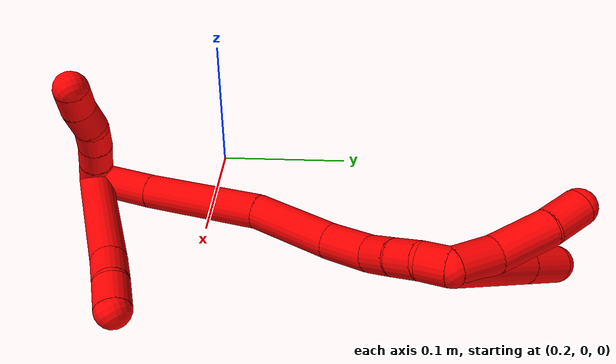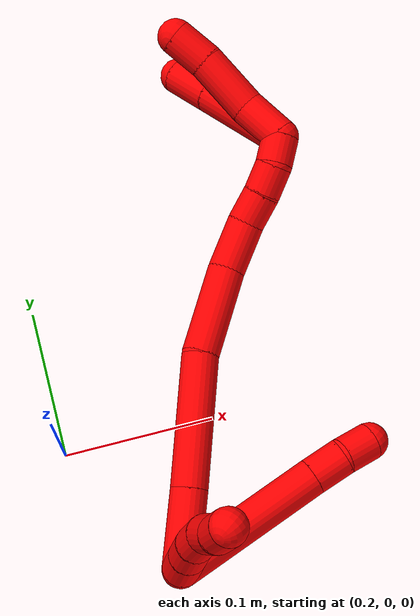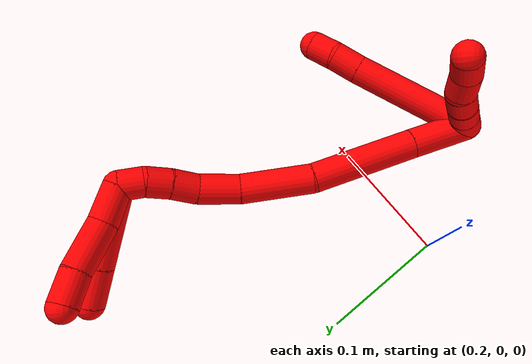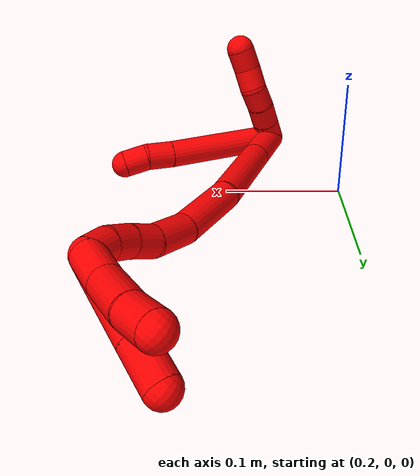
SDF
<sdf version="1.7">
 <world name="default">
  <model name="2">
   <static>0</static>
   <link name="2">
    <collision name="collision-cylinder-e_1_2_8">
     <pose>-0.030918 0.006807 0.041382 -0.16303 -0.635274 0.053705</pose>
     <geometry><cylinder><radius>0.0125</radius><length>0.104206</length></cylinder></geometry>
     <surface>
      <friction><ode><mu>1.16</mu><mu2>1.16</mu2><slip1>0</slip1><slip2>0</slip2></ode></friction>
      <contact><ode><kp>1e+06</kp><kd>1</kd><max_vel>0</max_vel><min_depth>0.001</min_depth></ode></contact>
     </surface>
    </collision>
    <visual name="visual-cylinder-e_1_2_8">
     <pose>-0.030918 0.006807 0.041382 -0.16303 -0.635274 0.053705</pose>
     <geometry><cylinder><radius>0.0125</radius><length>0.104206</length></cylinder></geometry>
     <material><ambient>1 0 0 1</ambient></material>
    </visual>
    <collision name="collision-cylinder-e_2_8_9">
     <pose>-0.069549 0.015231 0.0919 -0.175206 -0.693532 0.063455</pose>
     <geometry><cylinder><radius>0.0125</radius><length>0.02413</length></cylinder></geometry>
     <surface>
      <friction><ode><mu>1.16</mu><mu2>1.16</mu2><slip1>0</slip1><slip2>0</slip2></ode></friction>
      <contact><ode><kp>1e+06</kp><kd>1</kd><max_vel>0</max_vel><min_depth>0.001</min_depth></ode></contact>
     </surface>
    </collision>
    <visual name="visual-cylinder-e_2_8_9">
     <pose>-0.069549 0.015231 0.0919 -0.175206 -0.693532 0.063455</pose>
     <geometry><cylinder><radius>0.0125</radius><length>0.02413</length></cylinder></geometry>
     <material><ambient>1 0 0 1</ambient></material>
    </visual>
    <collision name="collision-cylinder-e_3_9_6">
     <pose>-0.082674 0.016437 0.11041 0.043826 -0.52329 -0.011738</pose>
     <geometry><cylinder><radius>0.0125</radius><length>0.021663</length></cylinder></geometry>
     <surface>
      <friction><ode><mu>1.16</mu><mu2>1.16</mu2><slip1>0</slip1><slip2>0</slip2></ode></friction>
      <contact><ode><kp>1e+06</kp><kd>1</kd><max_vel>0</max_vel><min_depth>0.001</min_depth></ode></contact>
     </surface>
    </collision>
    <visual name="visual-cylinder-e_3_9_6">
     <pose>-0.082674 0.016437 0.11041 0.043826 -0.52329 -0.011738</pose>
     <geometry><cylinder><radius>0.0125</radius><length>0.021663</length></cylinder></geometry>
     <material><ambient>1 0 0 1</ambient></material>
    </visual>
    <collision name="collision-cylinder-e_1_2_10">
     <pose>-0.007071 0.006709 -0.002234 -1.89219 -0.785433 1.04292</pose>
     <geometry><cylinder><radius>0.0125</radius><length>0.02</length></cylinder></geometry>
     <surface>
      <friction><ode><mu>1.16</mu><mu2>1.16</mu2><slip1>0</slip1><slip2>0</slip2></ode></friction>
      <contact><ode><kp>1e+06</kp><kd>1</kd><max_vel>0</max_vel><min_depth>0.001</min_depth></ode></contact>
     </surface>
    </collision>
    <visual name="visual-cylinder-e_1_2_10">
     <pose>-0.007071 0.006709 -0.002234 -1.89219 -0.785433 1.04292</pose>
     <geometry><cylinder><radius>0.0125</radius><length>0.02</length></cylinder></geometry>
     <material><ambient>1 0 0 1</ambient></material>
    </visual>
    <collision name="collision-cylinder-e_2_10_11">
     <pose>-0.02132 0.01995 -0.00688 -1.92455 -0.800491 1.09146</pose>
     <geometry><cylinder><radius>0.0125</radius><length>0.02</length></cylinder></geometry>
     <surface>
      <friction><ode><mu>1.16</mu><mu2>1.16</mu2><slip1>0</slip1><slip2>0</slip2></ode></friction>
      <contact><ode><kp>1e+06</kp><kd>1</kd><max_vel>0</max_vel><min_depth>0.001</min_depth></ode></contact>
     </surface>
    </collision>
    <visual name="visual-cylinder-e_2_10_11">
     <pose>-0.02132 0.01995 -0.00688 -1.92455 -0.800491 1.09146</pose>
     <geometry><cylinder><radius>0.0125</radius><length>0.02</length></cylinder></geometry>
     <material><ambient>1 0 0 1</ambient></material>
    </visual>
    <collision name="collision-cylinder-e_3_11_12">
     <pose>-0.036441 0.032143 -0.011494 -1.94189 -0.918011 1.25149</pose>
     <geometry><cylinder><radius>0.0125</radius><length>0.02</length></cylinder></geometry>
     <surface>
      <friction><ode><mu>1.16</mu><mu2>1.16</mu2><slip1>0</slip1><slip2>0</slip2></ode></friction>
      <contact><ode><kp>1e+06</kp><kd>1</kd><max_vel>0</max_vel><min_depth>0.001</min_depth></ode></contact>
     </surface>
    </collision>
    <visual name="visual-cylinder-e_3_11_12">
     <pose>-0.036441 0.032143 -0.011494 -1.94189 -0.918011 1.25149</pose>
     <geometry><cylinder><radius>0.0125</radius><length>0.02</length></cylinder></geometry>
     <material><ambient>1 0 0 1</ambient></material>
    </visual>
    <collision name="collision-cylinder-e_4_12_13">
     <pose>-0.052817 0.040867 -0.018114 -2.53507 -1.00328 2.10461</pose>
     <geometry><cylinder><radius>0.0125</radius><length>0.02</length></cylinder></geometry>
     <surface>
      <friction><ode><mu>1.16</mu><mu2>1.16</mu2><slip1>0</slip1><slip2>0</slip2></ode></friction>
      <contact><ode><kp>1e+06</kp><kd>1</kd><max_vel>0</max_vel><min_depth>0.001</min_depth></ode></contact>
     </surface>
    </collision>
    <visual name="visual-cylinder-e_4_12_13">
     <pose>-0.052817 0.040867 -0.018114 -2.53507 -1.00328 2.10461</pose>
     <geometry><cylinder><radius>0.0125</radius><length>0.02</length></cylinder></geometry>
     <material><ambient>1 0 0 1</ambient></material>
    </visual>
    <collision name="collision-cylinder-e_5_13_5">
     <pose>-0.069389 0.048814 -0.025676 -2.14312 -0.951031 1.51349</pose>
     <geometry><cylinder><radius>0.0125</radius><length>0.02</length></cylinder></geometry>
     <surface>
      <friction><ode><mu>1.16</mu><mu2>1.16</mu2><slip1>0</slip1><slip2>0</slip2></ode></friction>
      <contact><ode><kp>1e+06</kp><kd>1</kd><max_vel>0</max_vel><min_depth>0.001</min_depth></ode></contact>
     </surface>
    </collision>
    <visual name="visual-cylinder-e_5_13_5">
     <pose>-0.069389 0.048814 -0.025676 -2.14312 -0.951031 1.51349</pose>
     <geometry><cylinder><radius>0.0125</radius><length>0.02</length></cylinder></geometry>
     <material><ambient>1 0 0 1</ambient></material>
    </visual>
    <collision name="collision-cylinder-e_1_2_14">
     <pose>-0.000129 0.018304 0.017956 -0.794984 -0.005021 0.002108</pose>
     <geometry><cylinder><radius>0.0125</radius><length>0.051282</length></cylinder></geometry>
     <surface>
      <friction><ode><mu>1.16</mu><mu2>1.16</mu2><slip1>0</slip1><slip2>0</slip2></ode></friction>
      <contact><ode><kp>1e+06</kp><kd>1</kd><max_vel>0</max_vel><min_depth>0.001</min_depth></ode></contact>
     </surface>
    </collision>
    <visual name="visual-cylinder-e_1_2_14">
     <pose>-0.000129 0.018304 0.017956 -0.794984 -0.005021 0.002108</pose>
     <geometry><cylinder><radius>0.0125</radius><length>0.051282</length></cylinder></geometry>
     <material><ambient>1 0 0 1</ambient></material>
    </visual>
    <collision name="collision-cylinder-e_2_14_15">
     <pose>-0.000666 0.069634 0.066001 -0.83192 -0.00914 0.004038</pose>
     <geometry><cylinder><radius>0.0125</radius><length>0.08936</length></cylinder></geometry>
     <surface>
      <friction><ode><mu>1.16</mu><mu2>1.16</mu2><slip1>0</slip1><slip2>0</slip2></ode></friction>
      <contact><ode><kp>1e+06</kp><kd>1</kd><max_vel>0</max_vel><min_depth>0.001</min_depth></ode></contact>
     </surface>
    </collision>
    <visual name="visual-cylinder-e_2_14_15">
     <pose>-0.000666 0.069634 0.066001 -0.83192 -0.00914 0.004038</pose>
     <geometry><cylinder><radius>0.0125</radius><length>0.08936</length></cylinder></geometry>
     <material><ambient>1 0 0 1</ambient></material>
    </visual>
    <collision name="collision-cylinder-e_3_15_16">
     <pose>-0.005294 0.121115 0.119977 -0.657754 -0.138898 0.047469</pose>
     <geometry><cylinder><radius>0.0125</radius><length>0.060958</length></cylinder></geometry>
     <surface>
      <friction><ode><mu>1.16</mu><mu2>1.16</mu2><slip1>0</slip1><slip2>0</slip2></ode></friction>
      <contact><ode><kp>1e+06</kp><kd>1</kd><max_vel>0</max_vel><min_depth>0.001</min_depth></ode></contact>
     </surface>
    </collision>
    <visual name="visual-cylinder-e_3_15_16">
     <pose>-0.005294 0.121115 0.119977 -0.657754 -0.138898 0.047469</pose>
     <geometry><cylinder><radius>0.0125</radius><length>0.060958</length></cylinder></geometry>
     <material><ambient>1 0 0 1</ambient></material>
    </visual>
    <collision name="collision-cylinder-e_4_16_17">
     <pose>-0.015364 0.15088 0.155929 -0.753238 -0.340013 0.135577</pose>
     <geometry><cylinder><radius>0.0125</radius><length>0.035083</length></cylinder></geometry>
     <surface>
      <friction><ode><mu>1.16</mu><mu2>1.16</mu2><slip1>0</slip1><slip2>0</slip2></ode></friction>
      <contact><ode><kp>1e+06</kp><kd>1</kd><max_vel>0</max_vel><min_depth>0.001</min_depth></ode></contact>
     </surface>
    </collision>
    <visual name="visual-cylinder-e_4_16_17">
     <pose>-0.015364 0.15088 0.155929 -0.753238 -0.340013 0.135577</pose>
     <geometry><cylinder><radius>0.0125</radius><length>0.035083</length></cylinder></geometry>
     <material><ambient>1 0 0 1</ambient></material>
    </visual>
    <collision name="collision-cylinder-e_5_17_18">
     <pose>-0.027491 0.16952 0.173797 -0.900886 -0.591306 0.292487</pose>
     <geometry><cylinder><radius>0.0125</radius><length>0.02252</length></cylinder></geometry>
     <surface>
      <friction><ode><mu>1.16</mu><mu2>1.16</mu2><slip1>0</slip1><slip2>0</slip2></ode></friction>
      <contact><ode><kp>1e+06</kp><kd>1</kd><max_vel>0</max_vel><min_depth>0.001</min_depth></ode></contact>
     </surface>
    </collision>
    <visual name="visual-cylinder-e_5_17_18">
     <pose>-0.027491 0.16952 0.173797 -0.900886 -0.591306 0.292487</pose>
     <geometry><cylinder><radius>0.0125</radius><length>0.02252</length></cylinder></geometry>
     <material><ambient>1 0 0 1</ambient></material>
    </visual>
    <collision name="collision-cylinder-e_6_18_19">
     <pose>-0.038471 0.184137 0.185258 -0.910826 -0.471395 0.234161</pose>
     <geometry><cylinder><radius>0.0125</radius><length>0.020713</length></cylinder></geometry>
     <surface>
      <friction><ode><mu>1.16</mu><mu2>1.16</mu2><slip1>0</slip1><slip2>0</slip2></ode></friction>
      <contact><ode><kp>1e+06</kp><kd>1</kd><max_vel>0</max_vel><min_depth>0.001</min_depth></ode></contact>
     </surface>
    </collision>
    <visual name="visual-cylinder-e_6_18_19">
     <pose>-0.038471 0.184137 0.185258 -0.910826 -0.471395 0.234161</pose>
     <geometry><cylinder><radius>0.0125</radius><length>0.020713</length></cylinder></geometry>
     <material><ambient>1 0 0 1</ambient></material>
    </visual>
    <collision name="collision-cylinder-e_7_19_1">
     <pose>-0.04508 0.198662 0.197612 -0.824073 -0.19088 0.08363</pose>
     <geometry><cylinder><radius>0.0125</radius><length>0.020085</length></cylinder></geometry>
     <surface>
      <friction><ode><mu>1.16</mu><mu2>1.16</mu2><slip1>0</slip1><slip2>0</slip2></ode></friction>
      <contact><ode><kp>1e+06</kp><kd>1</kd><max_vel>0</max_vel><min_depth>0.001</min_depth></ode></contact>
     </surface>
    </collision>
    <visual name="visual-cylinder-e_7_19_1">
     <pose>-0.04508 0.198662 0.197612 -0.824073 -0.19088 0.08363</pose>
     <geometry><cylinder><radius>0.0125</radius><length>0.020085</length></cylinder></geometry>
     <material><ambient>1 0 0 1</ambient></material>
    </visual>
    <collision name="collision-cylinder-e_1_1_20">
     <pose>-0.036716 0.217272 0.206839 -1.35197 0.722465 -0.588453</pose>
     <geometry><cylinder><radius>0.0125</radius><length>0.031061</length></cylinder></geometry>
     <surface>
      <friction><ode><mu>1.16</mu><mu2>1.16</mu2><slip1>0</slip1><slip2>0</slip2></ode></friction>
      <contact><ode><kp>1e+06</kp><kd>1</kd><max_vel>0</max_vel><min_depth>0.001</min_depth></ode></contact>
     </surface>
    </collision>
    <visual name="visual-cylinder-e_1_1_20">
     <pose>-0.036716 0.217272 0.206839 -1.35197 0.722465 -0.588453</pose>
     <geometry><cylinder><radius>0.0125</radius><length>0.031061</length></cylinder></geometry>
     <material><ambient>1 0 0 1</ambient></material>
    </visual>
    <collision name="collision-cylinder-e_2_20_21">
     <pose>-0.016285 0.24695 0.210498 -1.50911 0.505928 -0.476811</pose>
     <geometry><cylinder><radius>0.0125</radius><length>0.041936</length></cylinder></geometry>
     <surface>
      <friction><ode><mu>1.16</mu><mu2>1.16</mu2><slip1>0</slip1><slip2>0</slip2></ode></friction>
      <contact><ode><kp>1e+06</kp><kd>1</kd><max_vel>0</max_vel><min_depth>0.001</min_depth></ode></contact>
     </surface>
    </collision>
    <visual name="visual-cylinder-e_2_20_21">
     <pose>-0.016285 0.24695 0.210498 -1.50911 0.505928 -0.476811</pose>
     <geometry><cylinder><radius>0.0125</radius><length>0.041936</length></cylinder></geometry>
     <material><ambient>1 0 0 1</ambient></material>
    </visual>
    <collision name="collision-cylinder-e_3_21_4">
     <pose>0.001524 0.276348 0.210742 -1.65056 0.602171 -0.648903</pose>
     <geometry><cylinder><radius>0.0125</radius><length>0.027004</length></cylinder></geometry>
     <surface>
      <friction><ode><mu>1.16</mu><mu2>1.16</mu2><slip1>0</slip1><slip2>0</slip2></ode></friction>
      <contact><ode><kp>1e+06</kp><kd>1</kd><max_vel>0</max_vel><min_depth>0.001</min_depth></ode></contact>
     </surface>
    </collision>
    <visual name="visual-cylinder-e_3_21_4">
     <pose>0.001524 0.276348 0.210742 -1.65056 0.602171 -0.648903</pose>
     <geometry><cylinder><radius>0.0125</radius><length>0.027004</length></cylinder></geometry>
     <material><ambient>1 0 0 1</ambient></material>
    </visual>
    <collision name="collision-cylinder-e_1_1_22">
     <pose>-0.019351 0.22213 0.213539 -1.05379 0.976579 -0.599431</pose>
     <geometry><cylinder><radius>0.0125</radius><length>0.066702</length></cylinder></geometry>
     <surface>
      <friction><ode><mu>1.16</mu><mu2>1.16</mu2><slip1>0</slip1><slip2>0</slip2></ode></friction>
      <contact><ode><kp>1e+06</kp><kd>1</kd><max_vel>0</max_vel><min_depth>0.001</min_depth></ode></contact>
     </surface>
    </collision>
    <visual name="visual-cylinder-e_1_1_22">
     <pose>-0.019351 0.22213 0.213539 -1.05379 0.976579 -0.599431</pose>
     <geometry><cylinder><radius>0.0125</radius><length>0.066702</length></cylinder></geometry>
     <material><ambient>1 0 0 1</ambient></material>
    </visual>
    <collision name="collision-cylinder-e_2_22_3">
     <pose>0.022099 0.246442 0.227355 -1.05441 0.978748 -0.601307</pose>
     <geometry><cylinder><radius>0.0125</radius><length>0.033298</length></cylinder></geometry>
     <surface>
      <friction><ode><mu>1.16</mu><mu2>1.16</mu2><slip1>0</slip1><slip2>0</slip2></ode></friction>
      <contact><ode><kp>1e+06</kp><kd>1</kd><max_vel>0</max_vel><min_depth>0.001</min_depth></ode></contact>
     </surface>
    </collision>
    <visual name="visual-cylinder-e_2_22_3">
     <pose>0.022099 0.246442 0.227355 -1.05441 0.978748 -0.601307</pose>
     <geometry><cylinder><radius>0.0125</radius><length>0.033298</length></cylinder></geometry>
     <material><ambient>1 0 0 1</ambient></material>
    </visual>
    <collision name="collision-sphere-3">
     <pose>0.035914 0.254521 0.231943 0 -0 0</pose>
     <geometry><sphere><radius>0.0125</radius></sphere></geometry>
     <surface>
      <friction><ode><mu>1.16</mu><mu2>1.16</mu2><slip1>0</slip1><slip2>0</slip2></ode></friction>
      <contact><ode><kp>1e+06</kp><kd>1</kd><max_vel>0</max_vel><min_depth>0.001</min_depth></ode></contact>
     </surface>
    </collision>
    <visual name="visual-sphere-3">
     <pose>0.035914 0.254521 0.231943 0 -0 0</pose>
     <geometry><sphere><radius>0.0125</radius></sphere></geometry>
     <material><ambient>1 0 0 1</ambient></material>
    </visual>
    <collision name="collision-sphere-22">
     <pose>0.008284 0.238362 0.222768 0 -0 0</pose>
     <geometry><sphere><radius>0.0125</radius></sphere></geometry>
     <surface>
      <friction><ode><mu>1.16</mu><mu2>1.16</mu2><slip1>0</slip1><slip2>0</slip2></ode></friction>
      <contact><ode><kp>1e+06</kp><kd>1</kd><max_vel>0</max_vel><min_depth>0.001</min_depth></ode></contact>
     </surface>
    </collision>
    <visual name="visual-sphere-22">
     <pose>0.008284 0.238362 0.222768 0 -0 0</pose>
     <geometry><sphere><radius>0.0125</radius></sphere></geometry>
     <material><ambient>1 0 0 1</ambient></material>
    </visual>
    <collision name="collision-sphere-4">
     <pose>0.009172 0.28744 0.209856 0 -0 0</pose>
     <geometry><sphere><radius>0.0125</radius></sphere></geometry>
     <surface>
      <friction><ode><mu>1.16</mu><mu2>1.16</mu2><slip1>0</slip1><slip2>0</slip2></ode></friction>
      <contact><ode><kp>1e+06</kp><kd>1</kd><max_vel>0</max_vel><min_depth>0.001</min_depth></ode></contact>
     </surface>
    </collision>
    <visual name="visual-sphere-4">
     <pose>0.009172 0.28744 0.209856 0 -0 0</pose>
     <geometry><sphere><radius>0.0125</radius></sphere></geometry>
     <material><ambient>1 0 0 1</ambient></material>
    </visual>
    <collision name="collision-sphere-21">
     <pose>-0.006124 0.265257 0.211629 0 -0 0</pose>
     <geometry><sphere><radius>0.0125</radius></sphere></geometry>
     <surface>
      <friction><ode><mu>1.16</mu><mu2>1.16</mu2><slip1>0</slip1><slip2>0</slip2></ode></friction>
      <contact><ode><kp>1e+06</kp><kd>1</kd><max_vel>0</max_vel><min_depth>0.001</min_depth></ode></contact>
     </surface>
    </collision>
    <visual name="visual-sphere-21">
     <pose>-0.006124 0.265257 0.211629 0 -0 0</pose>
     <geometry><sphere><radius>0.0125</radius></sphere></geometry>
     <material><ambient>1 0 0 1</ambient></material>
    </visual>
    <collision name="collision-sphere-20">
     <pose>-0.026446 0.228644 0.209368 0 -0 0</pose>
     <geometry><sphere><radius>0.0125</radius></sphere></geometry>
     <surface>
      <friction><ode><mu>1.16</mu><mu2>1.16</mu2><slip1>0</slip1><slip2>0</slip2></ode></friction>
      <contact><ode><kp>1e+06</kp><kd>1</kd><max_vel>0</max_vel><min_depth>0.001</min_depth></ode></contact>
     </surface>
    </collision>
    <visual name="visual-sphere-20">
     <pose>-0.026446 0.228644 0.209368 0 -0 0</pose>
     <geometry><sphere><radius>0.0125</radius></sphere></geometry>
     <material><ambient>1 0 0 1</ambient></material>
    </visual>
    <collision name="collision-sphere-11">
     <pose>-0.028497 0.026482 -0.009292 0 -0 0</pose>
     <geometry><sphere><radius>0.0125</radius></sphere></geometry>
     <surface>
      <friction><ode><mu>1.16</mu><mu2>1.16</mu2><slip1>0</slip1><slip2>0</slip2></ode></friction>
      <contact><ode><kp>1e+06</kp><kd>1</kd><max_vel>0</max_vel><min_depth>0.001</min_depth></ode></contact>
     </surface>
    </collision>
    <visual name="visual-sphere-11">
     <pose>-0.028497 0.026482 -0.009292 0 -0 0</pose>
     <geometry><sphere><radius>0.0125</radius></sphere></geometry>
     <material><ambient>1 0 0 1</ambient></material>
    </visual>
    <collision name="collision-sphere-10">
     <pose>-0.014143 0.013418 -0.004467 0 -0 0</pose>
     <geometry><sphere><radius>0.0125</radius></sphere></geometry>
     <surface>
      <friction><ode><mu>1.16</mu><mu2>1.16</mu2><slip1>0</slip1><slip2>0</slip2></ode></friction>
      <contact><ode><kp>1e+06</kp><kd>1</kd><max_vel>0</max_vel><min_depth>0.001</min_depth></ode></contact>
     </surface>
    </collision>
    <visual name="visual-sphere-10">
     <pose>-0.014143 0.013418 -0.004467 0 -0 0</pose>
     <geometry><sphere><radius>0.0125</radius></sphere></geometry>
     <material><ambient>1 0 0 1</ambient></material>
    </visual>
    <collision name="collision-sphere-6">
     <pose>-0.088087 0.016026 0.119783 0 -0 0</pose>
     <geometry><sphere><radius>0.0125</radius></sphere></geometry>
     <surface>
      <friction><ode><mu>1.16</mu><mu2>1.16</mu2><slip1>0</slip1><slip2>0</slip2></ode></friction>
      <contact><ode><kp>1e+06</kp><kd>1</kd><max_vel>0</max_vel><min_depth>0.001</min_depth></ode></contact>
     </surface>
    </collision>
    <visual name="visual-sphere-6">
     <pose>-0.088087 0.016026 0.119783 0 -0 0</pose>
     <geometry><sphere><radius>0.0125</radius></sphere></geometry>
     <material><ambient>1 0 0 1</ambient></material>
    </visual>
    <collision name="collision-sphere-9">
     <pose>-0.077261 0.016848 0.101036 0 -0 0</pose>
     <geometry><sphere><radius>0.0125</radius></sphere></geometry>
     <surface>
      <friction><ode><mu>1.16</mu><mu2>1.16</mu2><slip1>0</slip1><slip2>0</slip2></ode></friction>
      <contact><ode><kp>1e+06</kp><kd>1</kd><max_vel>0</max_vel><min_depth>0.001</min_depth></ode></contact>
     </surface>
    </collision>
    <visual name="visual-sphere-9">
     <pose>-0.077261 0.016848 0.101036 0 -0 0</pose>
     <geometry><sphere><radius>0.0125</radius></sphere></geometry>
     <material><ambient>1 0 0 1</ambient></material>
    </visual>
    <collision name="collision-sphere-2">
     <geometry><sphere><radius>0.0125</radius></sphere></geometry>
     <surface>
      <friction><ode><mu>1.16</mu><mu2>1.16</mu2><slip1>0</slip1><slip2>0</slip2></ode></friction>
      <contact><ode><kp>1e+06</kp><kd>1</kd><max_vel>0</max_vel><min_depth>0.001</min_depth></ode></contact>
     </surface>
    </collision>
    <visual name="visual-sphere-2">
     <geometry><sphere><radius>0.0125</radius></sphere></geometry>
     <material><ambient>1 0 0 1</ambient></material>
    </visual>
    <collision name="collision-sphere-19">
     <pose>-0.043174 0.191426 0.190915 0 -0 0</pose>
     <geometry><sphere><radius>0.0125</radius></sphere></geometry>
     <surface>
      <friction><ode><mu>1.16</mu><mu2>1.16</mu2><slip1>0</slip1><slip2>0</slip2></ode></friction>
      <contact><ode><kp>1e+06</kp><kd>1</kd><max_vel>0</max_vel><min_depth>0.001</min_depth></ode></contact>
     </surface>
    </collision>
    <visual name="visual-sphere-19">
     <pose>-0.043174 0.191426 0.190915 0 -0 0</pose>
     <geometry><sphere><radius>0.0125</radius></sphere></geometry>
     <material><ambient>1 0 0 1</ambient></material>
    </visual>
    <collision name="collision-sphere-8">
     <pose>-0.061836 0.013614 0.082764 0 -0 0</pose>
     <geometry><sphere><radius>0.0125</radius></sphere></geometry>
     <surface>
      <friction><ode><mu>1.16</mu><mu2>1.16</mu2><slip1>0</slip1><slip2>0</slip2></ode></friction>
      <contact><ode><kp>1e+06</kp><kd>1</kd><max_vel>0</max_vel><min_depth>0.001</min_depth></ode></contact>
     </surface>
    </collision>
    <visual name="visual-sphere-8">
     <pose>-0.061836 0.013614 0.082764 0 -0 0</pose>
     <geometry><sphere><radius>0.0125</radius></sphere></geometry>
     <material><ambient>1 0 0 1</ambient></material>
    </visual>
    <collision name="collision-sphere-12">
     <pose>-0.044385 0.037803 -0.013697 0 -0 0</pose>
     <geometry><sphere><radius>0.0125</radius></sphere></geometry>
     <surface>
      <friction><ode><mu>1.16</mu><mu2>1.16</mu2><slip1>0</slip1><slip2>0</slip2></ode></friction>
      <contact><ode><kp>1e+06</kp><kd>1</kd><max_vel>0</max_vel><min_depth>0.001</min_depth></ode></contact>
     </surface>
    </collision>
    <visual name="visual-sphere-12">
     <pose>-0.044385 0.037803 -0.013697 0 -0 0</pose>
     <geometry><sphere><radius>0.0125</radius></sphere></geometry>
     <material><ambient>1 0 0 1</ambient></material>
    </visual>
    <collision name="collision-sphere-13">
     <pose>-0.061249 0.043931 -0.02253 0 -0 0</pose>
     <geometry><sphere><radius>0.0125</radius></sphere></geometry>
     <surface>
      <friction><ode><mu>1.16</mu><mu2>1.16</mu2><slip1>0</slip1><slip2>0</slip2></ode></friction>
      <contact><ode><kp>1e+06</kp><kd>1</kd><max_vel>0</max_vel><min_depth>0.001</min_depth></ode></contact>
     </surface>
    </collision>
    <visual name="visual-sphere-13">
     <pose>-0.061249 0.043931 -0.02253 0 -0 0</pose>
     <geometry><sphere><radius>0.0125</radius></sphere></geometry>
     <material><ambient>1 0 0 1</ambient></material>
    </visual>
    <collision name="collision-sphere-5">
     <pose>-0.07753 0.053697 -0.028822 0 -0 0</pose>
     <geometry><sphere><radius>0.0125</radius></sphere></geometry>
     <surface>
      <friction><ode><mu>1.16</mu><mu2>1.16</mu2><slip1>0</slip1><slip2>0</slip2></ode></friction>
      <contact><ode><kp>1e+06</kp><kd>1</kd><max_vel>0</max_vel><min_depth>0.001</min_depth></ode></contact>
     </surface>
    </collision>
    <visual name="visual-sphere-5">
     <pose>-0.07753 0.053697 -0.028822 0 -0 0</pose>
     <geometry><sphere><radius>0.0125</radius></sphere></geometry>
     <material><ambient>1 0 0 1</ambient></material>
    </visual>
    <collision name="collision-sphere-14">
     <pose>-0.000257 0.036607 0.035912 0 -0 0</pose>
     <geometry><sphere><radius>0.0125</radius></sphere></geometry>
     <surface>
      <friction><ode><mu>1.16</mu><mu2>1.16</mu2><slip1>0</slip1><slip2>0</slip2></ode></friction>
      <contact><ode><kp>1e+06</kp><kd>1</kd><max_vel>0</max_vel><min_depth>0.001</min_depth></ode></contact>
     </surface>
    </collision>
    <visual name="visual-sphere-14">
     <pose>-0.000257 0.036607 0.035912 0 -0 0</pose>
     <geometry><sphere><radius>0.0125</radius></sphere></geometry>
     <material><ambient>1 0 0 1</ambient></material>
    </visual>
    <collision name="collision-sphere-15">
     <pose>-0.001074 0.102661 0.096089 0 -0 0</pose>
     <geometry><sphere><radius>0.0125</radius></sphere></geometry>
     <surface>
      <friction><ode><mu>1.16</mu><mu2>1.16</mu2><slip1>0</slip1><slip2>0</slip2></ode></friction>
      <contact><ode><kp>1e+06</kp><kd>1</kd><max_vel>0</max_vel><min_depth>0.001</min_depth></ode></contact>
     </surface>
    </collision>
    <visual name="visual-sphere-15">
     <pose>-0.001074 0.102661 0.096089 0 -0 0</pose>
     <geometry><sphere><radius>0.0125</radius></sphere></geometry>
     <material><ambient>1 0 0 1</ambient></material>
    </visual>
    <collision name="collision-sphere-16">
     <pose>-0.009514 0.139569 0.143865 0 -0 0</pose>
     <geometry><sphere><radius>0.0125</radius></sphere></geometry>
     <surface>
      <friction><ode><mu>1.16</mu><mu2>1.16</mu2><slip1>0</slip1><slip2>0</slip2></ode></friction>
      <contact><ode><kp>1e+06</kp><kd>1</kd><max_vel>0</max_vel><min_depth>0.001</min_depth></ode></contact>
     </surface>
    </collision>
    <visual name="visual-sphere-16">
     <pose>-0.009514 0.139569 0.143865 0 -0 0</pose>
     <geometry><sphere><radius>0.0125</radius></sphere></geometry>
     <material><ambient>1 0 0 1</ambient></material>
    </visual>
    <collision name="collision-sphere-17">
     <pose>-0.021214 0.162192 0.167992 0 -0 0</pose>
     <geometry><sphere><radius>0.0125</radius></sphere></geometry>
     <surface>
      <friction><ode><mu>1.16</mu><mu2>1.16</mu2><slip1>0</slip1><slip2>0</slip2></ode></friction>
      <contact><ode><kp>1e+06</kp><kd>1</kd><max_vel>0</max_vel><min_depth>0.001</min_depth></ode></contact>
     </surface>
    </collision>
    <visual name="visual-sphere-17">
     <pose>-0.021214 0.162192 0.167992 0 -0 0</pose>
     <geometry><sphere><radius>0.0125</radius></sphere></geometry>
     <material><ambient>1 0 0 1</ambient></material>
    </visual>
    <collision name="collision-sphere-18">
     <pose>-0.033768 0.176848 0.179601 0 -0 0</pose>
     <geometry><sphere><radius>0.0125</radius></sphere></geometry>
     <surface>
      <friction><ode><mu>1.16</mu><mu2>1.16</mu2><slip1>0</slip1><slip2>0</slip2></ode></friction>
      <contact><ode><kp>1e+06</kp><kd>1</kd><max_vel>0</max_vel><min_depth>0.001</min_depth></ode></contact>
     </surface>
    </collision>
    <visual name="visual-sphere-18">
     <pose>-0.033768 0.176848 0.179601 0 -0 0</pose>
     <geometry><sphere><radius>0.0125</radius></sphere></geometry>
     <material><ambient>1 0 0 1</ambient></material>
    </visual>
    <collision name="collision-sphere-1">
     <pose>-0.046985 0.205899 0.204309 0 -0 0</pose>
     <geometry><sphere><radius>0.0125</radius></sphere></geometry>
     <surface>
      <friction><ode><mu>1.16</mu><mu2>1.16</mu2><slip1>0</slip1><slip2>0</slip2></ode></friction>
      <contact><ode><kp>1e+06</kp><kd>1</kd><max_vel>0</max_vel><min_depth>0.001</min_depth></ode></contact>
     </surface>
    </collision>
    <visual name="visual-sphere-1">
     <pose>-0.046985 0.205899 0.204309 0 -0 0</pose>
     <geometry><sphere><radius>0.0125</radius></sphere></geometry>
     <material><ambient>1 0 0 1</ambient></material>
    </visual>
    <inertial>
     <pose>-0.021357 0.111268 0.108951 0 -0 0</pose>
     <mass>0.75</mass>
     <inertia>
      <ixx>0.000203</ixx>
      <ixy>0</ixy>
      <ixz>0</ixz>
      <iyy>0.000239</iyy>
      <iyz>0</iyz>
      <izz>-5.4e-05</izz>
     </inertia>
    </inertial>
   </link>
   <pose>0.255227 -0.092583 0.012225 2.33677 0.637651 2.77479</pose>
  </model>
 </world>
</sdf>
